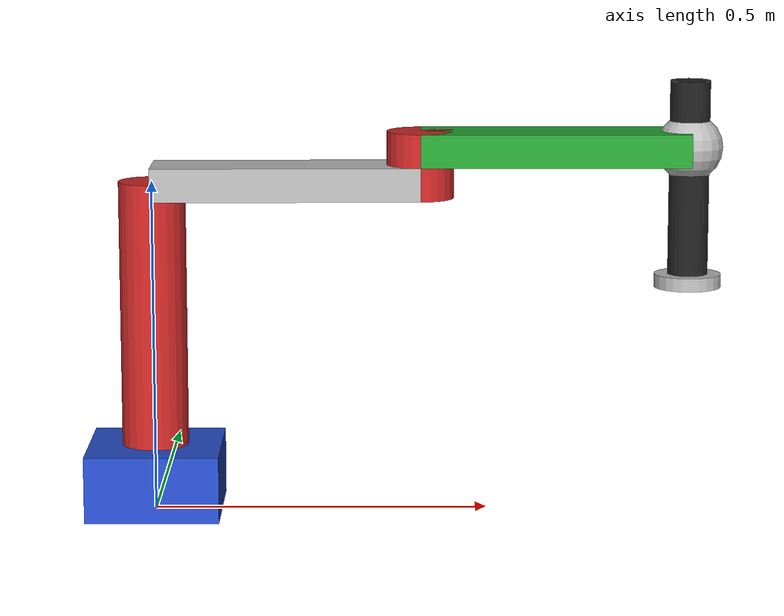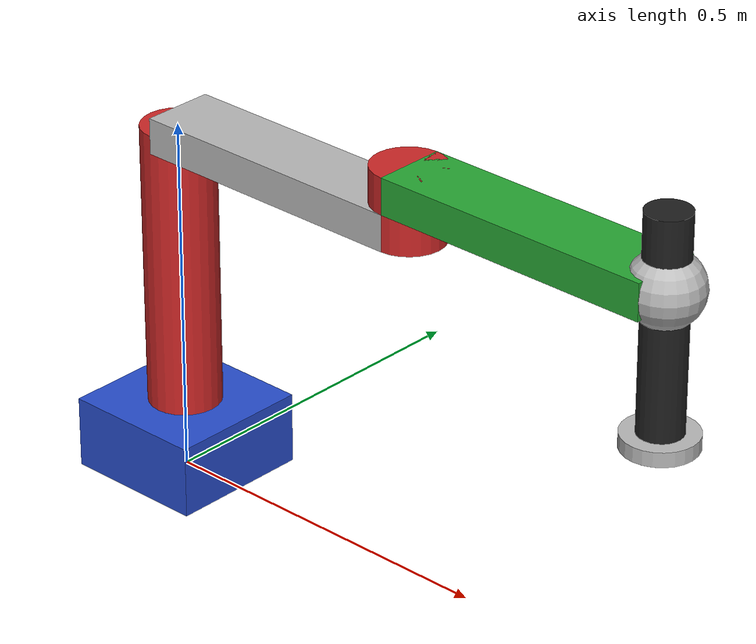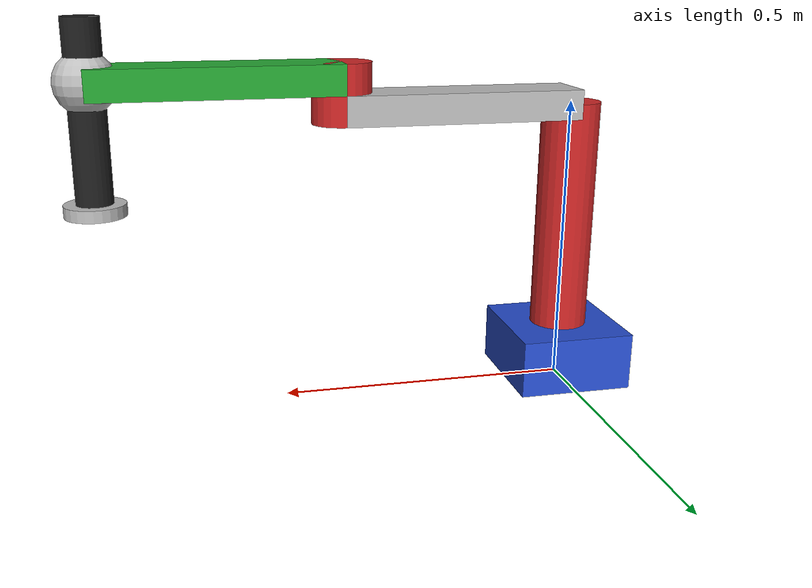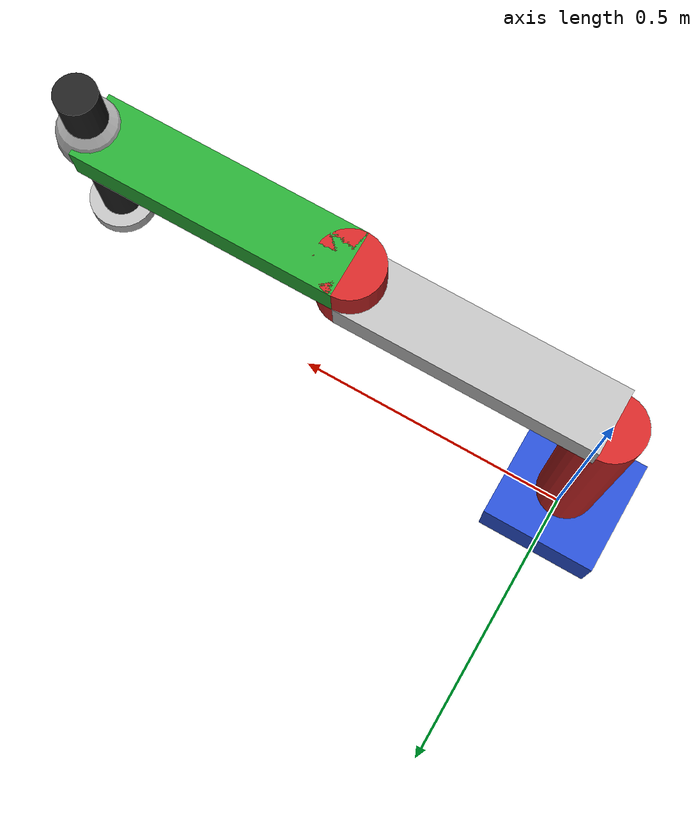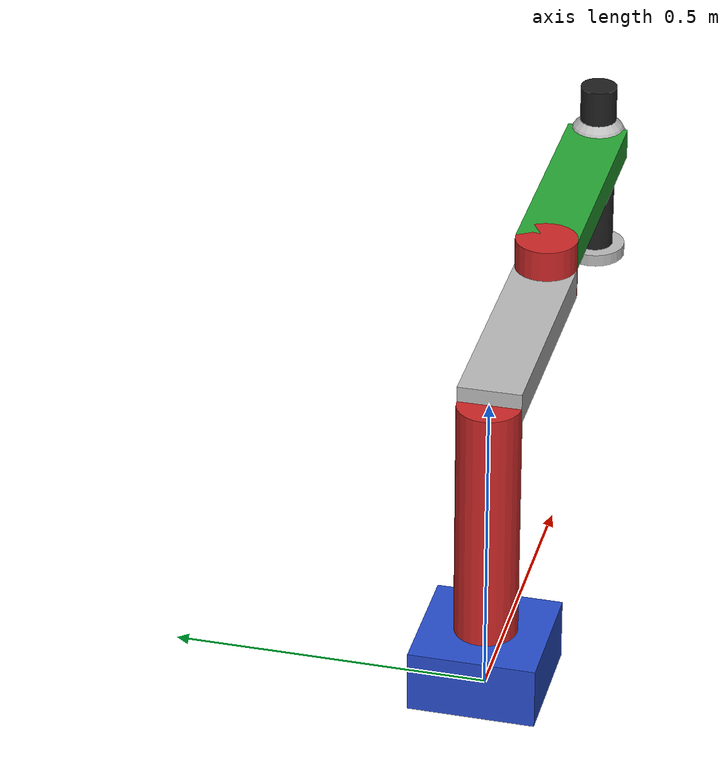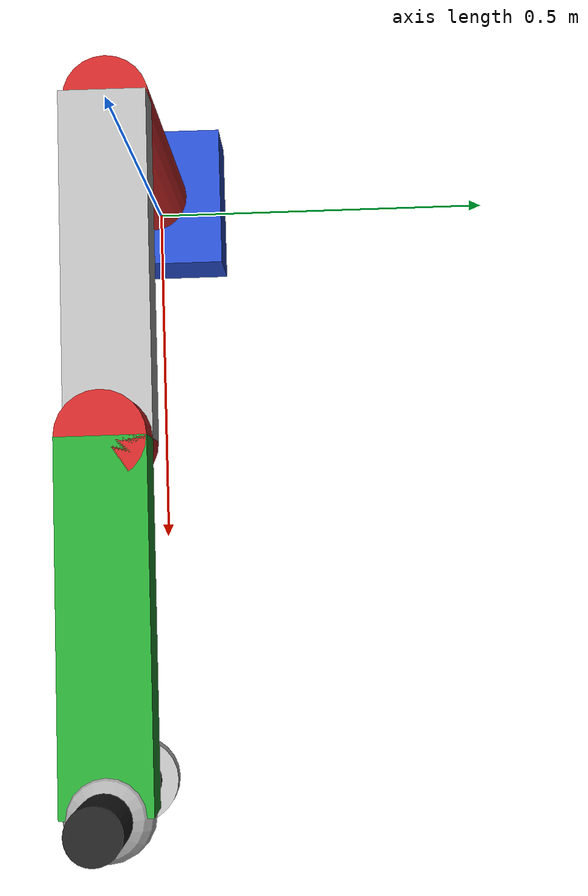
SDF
<sdf version='1.6'>
  <model name='scara'>
    <link name='base'>
      <pose frame=''>0 0 0 0 -0 0</pose>
      <inertial>
        <pose frame=''>0 0 0.05 0 -0 0</pose>
        <mass>1</mass>
        <inertia>
          <ixx>0.004</ixx>
          <ixy>0</ixy>
          <ixz>0</ixz>
          <iyy>0.004</iyy>
          <iyz>0</iyz>
          <izz>0.006</izz>
        </inertia>
      </inertial>
      <collision name='base_fixed_joint_lump__collision_base_collision'>
        <pose frame=''>0 0 0.05 0 -0 0</pose>
        <geometry>
          <box>
            <size>0.2 0.2 0.1</size>
          </box>
        </geometry>
      </collision>
      <visual name='base_visual_visual'>
        <pose frame=''>0 0 0.05 0 -0 0</pose>
        <geometry>
          <box>
            <size>0.2 0.2 0.1</size>
          </box>
        </geometry>
        <material>
          <script>
            <name>Gazebo/Blue</name>
            <uri>file://media/materials/scripts/gazebo.material</uri>
          </script>
        </material>
      </visual>
      <gravity>1</gravity>
      <velocity_decay/>
    </link>
    <joint name='base_joint' type='fixed'>
      <child>base</child>
      <parent>world</parent>
    </joint>
    <link name='link11'>
      <pose frame=''>0 0 0 0 -0 0</pose>
      <inertial>
        <pose frame=''>0.2 0 0.441667 0 -0 0</pose>
        <mass>3</mass>
        <inertia>
          <ixx>0.0478747</ixx>
          <ixy>0</ixy>
          <ixz>-0.045</ixz>
          <iyy>0.261875</iyy>
          <iyz>0</iyz>
          <izz>0.0966</izz>
        </inertia>
      </inertial>
      <collision name='link11_collision_collision'>
        <pose frame=''>0 0 0.3 0 -0 0</pose>
        <geometry>
          <cylinder>
            <length>0.4</length>
            <radius>0.05</radius>
          </cylinder>
        </geometry>
        <surface>
          <contact>
            <ode/>
          </contact>
          <friction>
            <ode/>
          </friction>
        </surface>
      </collision>
      <collision name='link11_fixed_joint_lump__link12_fixed_collision_collision_1'>
        <pose frame=''>0.2 0 0.5 0 -0 0</pose>
        <geometry>
          <box>
            <size>0.4 0.1 0.05</size>
          </box>
        </geometry>
      </collision>
      <collision name='link11_fixed_joint_lump__link13_collision_collision_2'>
        <pose frame=''>0.4 0 0.525 0 -0 0</pose>
        <geometry>
          <cylinder>
            <length>0.1</length>
            <radius>0.05</radius>
          </cylinder>
        </geometry>
        <surface>
          <contact>
            <ode/>
          </contact>
          <friction>
            <ode/>
          </friction>
        </surface>
      </collision>
      <visual name='link11_visual_visual'>
        <pose frame=''>0 0 0.3 0 -0 0</pose>
        <geometry>
          <cylinder>
            <length>0.4</length>
            <radius>0.05</radius>
          </cylinder>
        </geometry>
        <material>
          <script>
            <name>Gazebo/Red</name>
            <uri>file://media/materials/scripts/gazebo.material</uri>
          </script>
        </material>
      </visual>
      <visual name='link11_fixed_joint_lump__link12_fixed_visual_visual_1'>
        <pose frame=''>0.2 0 0.5 0 -0 0</pose>
        <geometry>
          <box>
            <size>0.4 0.1 0.05</size>
          </box>
        </geometry>
      </visual>
      <visual name='link11_fixed_joint_lump__link13_visual_visual_2'>
        <pose frame=''>0.4 0 0.525 0 -0 0</pose>
        <geometry>
          <cylinder>
            <length>0.1</length>
            <radius>0.05</radius>
          </cylinder>
        </geometry>
        <material>
          <script>
            <name>Gazebo/Red</name>
            <uri>file://media/materials/scripts/gazebo.material</uri>
          </script>
        </material>
      </visual>
      <velocity_decay/>
      <velocity_decay/>
      <gravity>1</gravity>
      <velocity_decay/>
    </link>
    <joint name='revolute_joint_1' type='revolute'>
      <child>link11</child>
      <parent>base</parent>
      <axis>
        <xyz>0 0 1</xyz>
        <limit>
          <lower>-1e+16</lower>
          <upper>1e+16</upper>
        </limit>
        <dynamics>
          <damping>0.01</damping>
          <friction>0</friction>
          <spring_reference>0</spring_reference>
          <spring_stiffness>0</spring_stiffness>
        </dynamics>
        <use_parent_model_frame>1</use_parent_model_frame>
      </axis>
    </joint>
    <link name='link21'>
      <pose frame=''>0.4 0 0.5 0 -0 0</pose>
      <inertial>
        <pose frame=''>0.333333 0 0.05 0 -0 0</pose>
        <mass>1.5</mass>
        <inertia>
          <ixx>0.002</ixx>
          <ixy>0</ixy>
          <ixz>-3.46945e-18</ixz>
          <iyy>0.0278333</iyy>
          <iyz>0</iyz>
          <izz>0.0284333</izz>
        </inertia>
      </inertial>
      <collision name='link21_fixed_1_collision_1_collision'>
        <pose frame=''>0.2 0 0.05 0 -0 0</pose>
        <geometry>
          <box>
            <size>0.4 0.1 0.05</size>
          </box>
        </geometry>
        <surface>
          <contact>
            <ode/>
          </contact>
          <friction>
            <ode/>
          </friction>
        </surface>
      </collision>
      <collision name='link21_fixed_joint_lump__link22_fixed_2_collision_2_collision_1'>
        <pose frame=''>0.4 0 0.05 0 -0 0</pose>
        <geometry>
          <sphere>
            <radius>0.05</radius>
          </sphere>
        </geometry>
      </collision>
      <visual name='link21_fixed_1_visual_1_visual'>
        <pose frame=''>0.2 0 0.05 0 -0 0</pose>
        <geometry>
          <box>
            <size>0.4 0.1 0.05</size>
          </box>
        </geometry>
        <material>
          <script>
            <name>Gazebo/Green</name>
            <uri>file://media/materials/scripts/gazebo.material</uri>
          </script>
        </material>
      </visual>
      <visual name='link21_fixed_joint_lump__link22_fixed_2_visual_2_visual_1'>
        <pose frame=''>0.4 0 0.05 0 -0 0</pose>
        <geometry>
          <sphere>
            <radius>0.05</radius>
          </sphere>
        </geometry>
      </visual>
      <velocity_decay/>
      <gravity>1</gravity>
      <velocity_decay/>
    </link>
    <joint name='revolute_joint_2' type='revolute'>
      <child>link21</child>
      <parent>link11</parent>
      <axis>
        <xyz>0 0 1</xyz>
        <limit>
          <lower>-1e+16</lower>
          <upper>1e+16</upper>
          <effort>100</effort>
          <velocity>0.4</velocity>
        </limit>
        <dynamics>
          <damping>0.2</damping>
          <friction>0.001</friction>
          <spring_reference>0</spring_reference>
          <spring_stiffness>0</spring_stiffness>
        </dynamics>
        <use_parent_model_frame>1</use_parent_model_frame>
      </axis>
    </joint>
    <link name='link3'>
      <pose frame=''>0.8 0 0.5 0 -0 0</pose>
      <inertial>
        <pose frame=''>0 0 0 0 -0 0</pose>
        <mass>1</mass>
        <inertia>
          <ixx>0.025225</ixx>
          <ixy>0</ixy>
          <ixz>0</ixz>
          <iyy>0.025225</iyy>
          <iyz>0</iyz>
          <izz>0.00045</izz>
        </inertia>
      </inertial>
      <collision name='link3_collision_collision'>
        <pose frame=''>0 0 0 0 -0 0</pose>
        <geometry>
          <cylinder>
            <length>0.3</length>
            <radius>0.03</radius>
          </cylinder>
        </geometry>
        <surface>
          <contact>
            <ode/>
          </contact>
          <friction>
            <ode/>
          </friction>
        </surface>
      </collision>
      <visual name='link3_visual_visual'>
        <pose frame=''>0 0 0 0 -0 0</pose>
        <geometry>
          <cylinder>
            <length>0.3</length>
            <radius>0.03</radius>
          </cylinder>
        </geometry>
        <material>
          <script>
            <name>Gazebo/Black</name>
            <uri>file://media/materials/scripts/gazebo.material</uri>
          </script>
        </material>
      </visual>
      <gravity>1</gravity>
      <velocity_decay/>
    </link>
    <joint name='joint_3' type='prismatic'>
      <child>link3</child>
      <parent>link21</parent>
      <axis>
        <xyz>0 0 1</xyz>
        <limit>
          <lower>-0.2</lower>
          <upper>0.2</upper>
          <effort>1000</effort>
          <velocity>0.1</velocity>
        </limit>
        <dynamics>
          <damping>0.4</damping>
          <friction>15</friction>
          <spring_reference>0</spring_reference>
          <spring_stiffness>0</spring_stiffness>
        </dynamics>
        <use_parent_model_frame>1</use_parent_model_frame>
      </axis>
    </joint>
    <link name='link4'>
      <pose frame=''>0.8 0 0.35 0 -0 0</pose>
      <inertial>
        <pose frame=''>0 0 0 0 -0 0</pose>
        <mass>0.02</mass>
        <inertia>
          <ixx>0.025225</ixx>
          <ixy>0</ixy>
          <ixz>0</ixz>
          <iyy>0.025225</iyy>
          <iyz>0</iyz>
          <izz>0.00045</izz>
        </inertia>
      </inertial>
      <collision name='link4_collision_collision'>
        <pose frame=''>0 0 0 0 -0 0</pose>
        <geometry>
          <cylinder>
            <length>0.02</length>
            <radius>0.05</radius>
          </cylinder>
        </geometry>
      </collision>
      <visual name='link4_visual_visual'>
        <pose frame=''>0 0 0 0 -0 0</pose>
        <geometry>
          <cylinder>
            <length>0.02</length>
            <radius>0.05</radius>
          </cylinder>
        </geometry>
      </visual>
    </link>
    <joint name='joint_4' type='revolute'>
      <child>link4</child>
      <parent>link3</parent>
      <axis>
        <xyz>0 0 1</xyz>
        <limit>
          <lower>-0.2</lower>
          <upper>0.2</upper>
          <effort>1000</effort>
          <velocity>0.1</velocity>
        </limit>
        <dynamics>
          <damping>0.4</damping>
          <friction>15</friction>
          <spring_reference>0</spring_reference>
          <spring_stiffness>0</spring_stiffness>
        </dynamics>
        <use_parent_model_frame>1</use_parent_model_frame>
      </axis>
    </joint>
    <static>0</static>
  </model>
</sdf>
